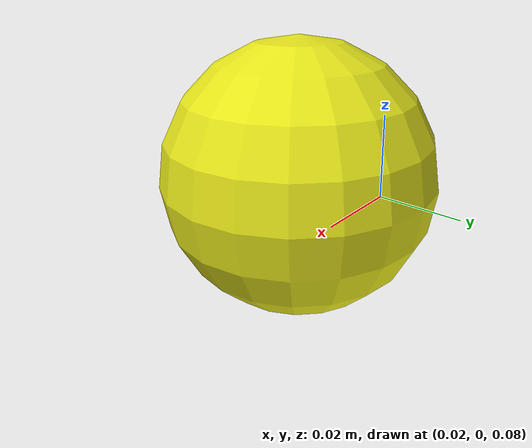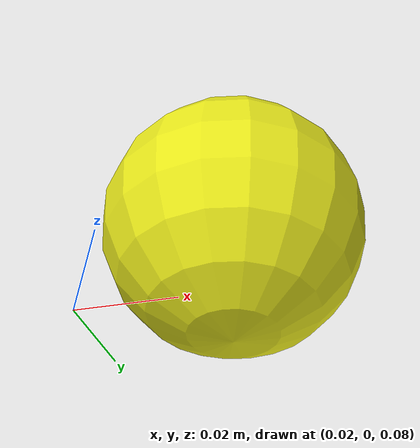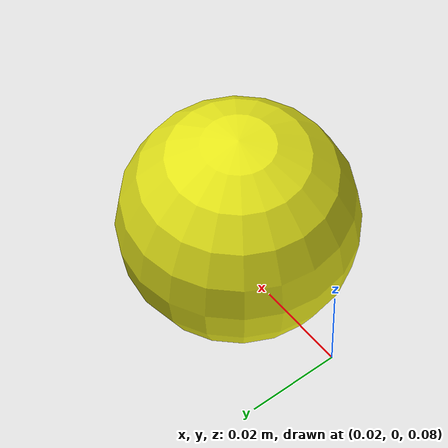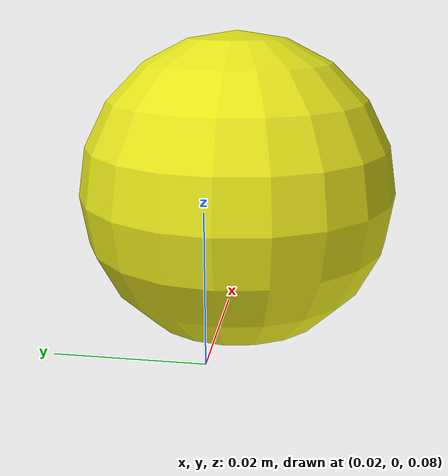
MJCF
<mujoco>
  <!-- Sphere (like tennis ball) -->
  <worldbody>
    <body name="object" pos="0.05 0 0.095">
      <freejoint name="object_joint"/>
      <inertial pos="0 0 0" mass="0.058" diaginertia="6e-5 6e-5 6e-5"/>
      <geom name="object_geom" type="sphere" size="0.025"
            rgba="0.9 0.9 0.1 1" contype="1" conaffinity="1"
            friction="1 0.5 0.01"/>
    </body>
  </worldbody>
</mujoco>
